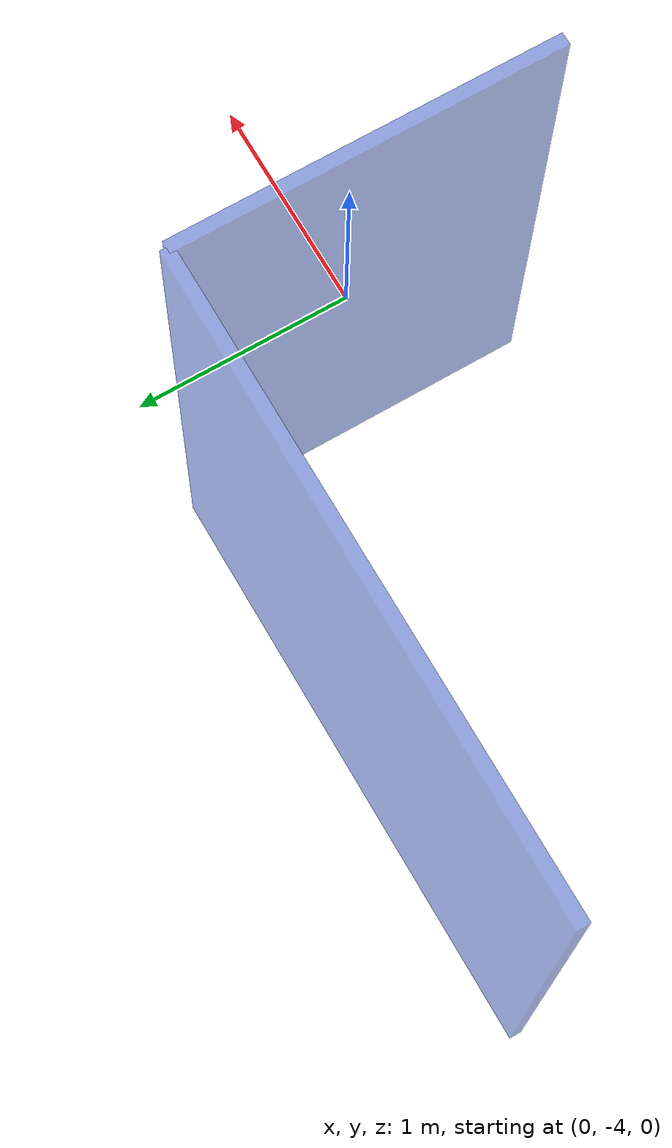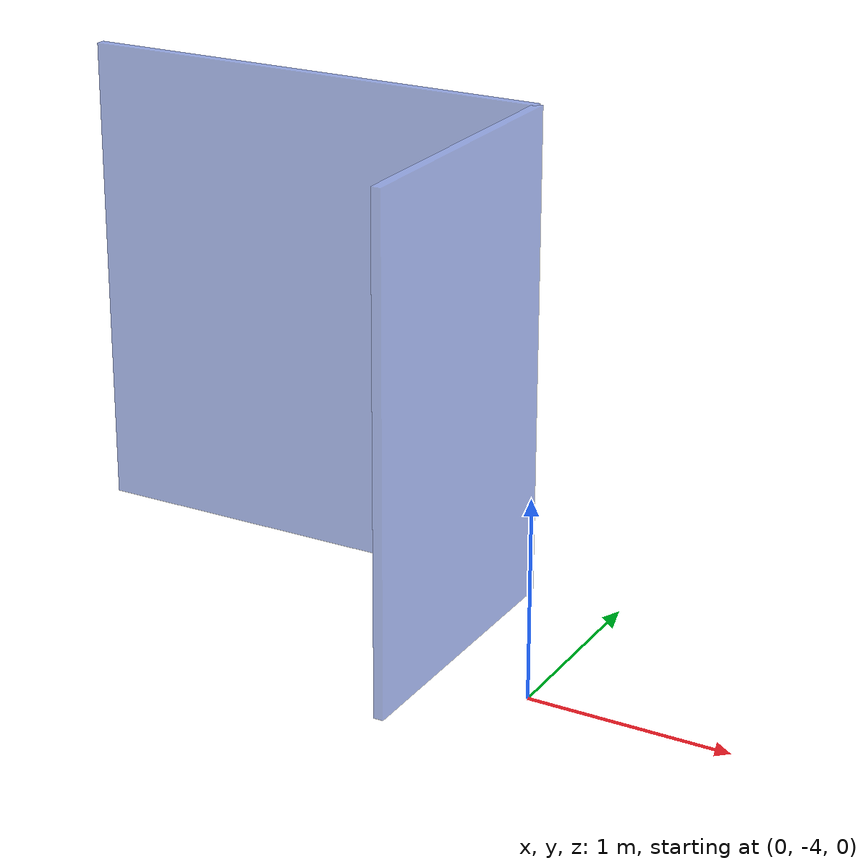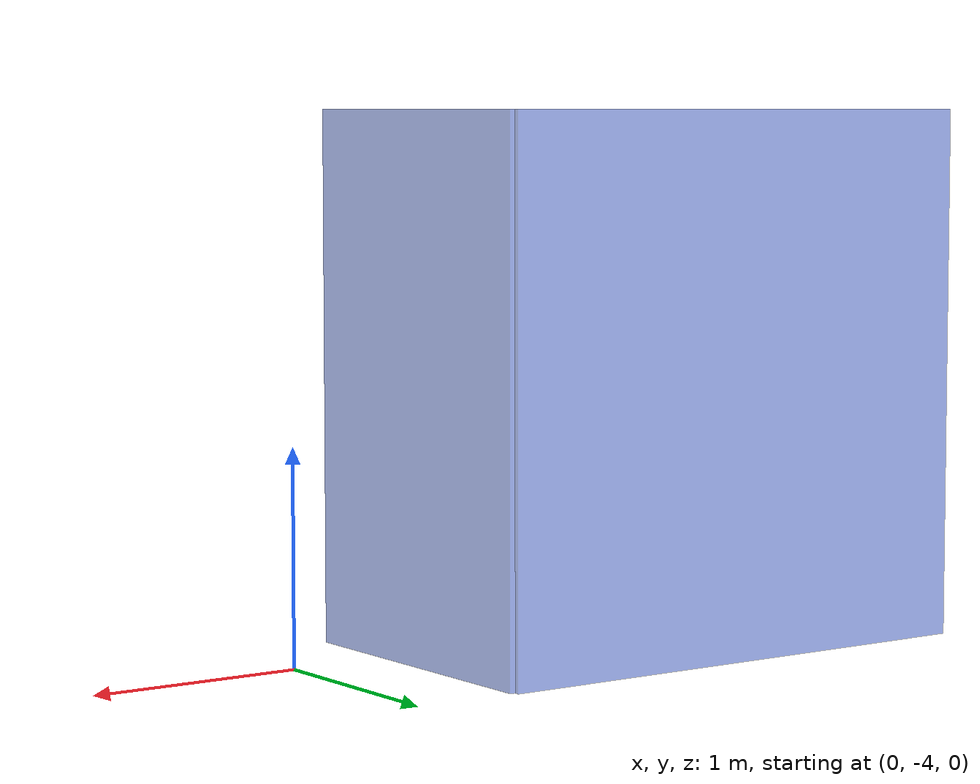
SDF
<?xml version='1.0'?>
<sdf version='1.4'>
  <model name='patio'>
    <link name='Wall_North'>
      <collision name='Wall_North_Collision'>
        <geometry>
          <box>
            <size>2.5 0.05 2.5</size>
          </box>
        </geometry>
        <pose>0 0 1.25 0 -0 0</pose>
      </collision>
      <visual name='Wall_North_Visual'>
        <pose>0 0 1.25 0 0 0</pose>
        <geometry>
          <box>
            <size>2.5 0.05 2.5</size>
          </box>
        </geometry>
        <material>
          <script>
            <uri>file://media/materials/scripts/gazebo.material</uri>
            <name>Gazebo/BlueTransparent</name>
          </script>
        </material>
      </visual>
      <velocity_decay>
        <linear>0</linear>
        <angular>0</angular>
      </velocity_decay>
      <pose>-1.75 -3 0 0 0 0 </pose>
    </link>
    <link name='Wall_East'>
      <collision name='Wall_East_Collision'>
        <geometry>
          <box>
            <size>1.5 0.05 2.5</size>
          </box>
        </geometry>
        <pose>0 0 1.25 0 -0 0</pose>
      </collision>
      <visual name='Wall_East_Visual'>
        <pose>0 0 1.25 0 -0 0</pose>
        <geometry>
          <box>
            <size>1.5 0.05 2.5</size>
          </box>
        </geometry>
        <material>
          <script>
            <uri>file://media/materials/scripts/gazebo.material</uri>
            <name>Gazebo/BlueTransparent</name>
          </script>
        </material>
      </visual>
      <velocity_decay>
        <linear>0</linear>
        <angular>0</angular>
      </velocity_decay>
      <pose>-0.5 -3.75 0 0 0 1.57079632679</pose>
    </link>
    <static>1</static>
  </model>
</sdf>
